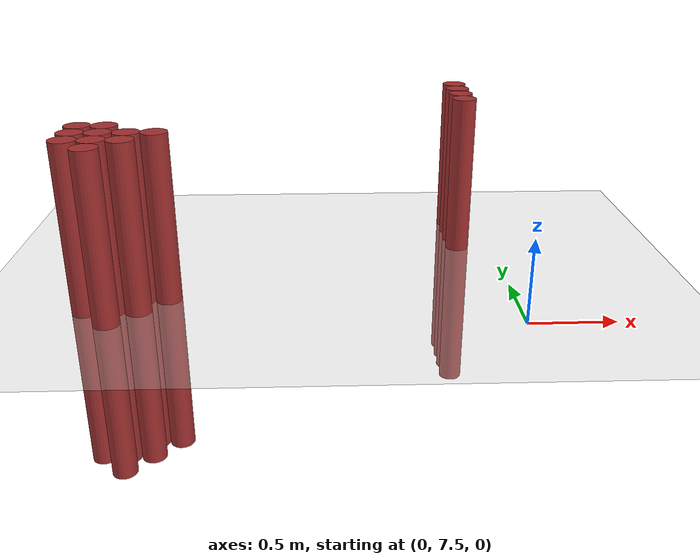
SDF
<sdf version="1.6">
 <world name="default">
  <model name="ground_plane">
   <static>1</static>
   <link name="link">
    <collision name="collision">
     <geometry><plane><normal>0 0 1</normal><size>100 100</size></plane></geometry>
     <surface><friction><ode><mu>100</mu><mu2>50</mu2></ode></friction></surface>
    </collision>
    <visual name="visual">
     <cast_shadows>0</cast_shadows>
     <geometry><plane><normal>0 0 1</normal><size>100 100</size></plane></geometry>
     <material>
      <script><uri>file://media/materials/scripts/gazebo.material</uri><name>Gazebo/Grey</name></script>
     </material>
    </visual>
   </link>
  </model>
  <model name="unit_cylinder_172">
   <static>1</static>
   <pose>-2.475000 7.725000 0.000000 0.000000 0.000000 0.000000</pose>
   <link name="link">
    <inertial>
     <mass>1</mass>
     <inertia><ixx>0.145833</ixx><ixy>0</ixy><ixz>0</ixz><iyy>0.145833</iyy><iyz>0</iyz><izz>0.125</izz></inertia>
    </inertial>
    <collision name="collision">
     <geometry><cylinder><radius>0.075000</radius><length>2</length></cylinder></geometry>
    </collision>
    <visual name="visual">
     <geometry><cylinder><radius>0.075000</radius><length>2</length></cylinder></geometry>
     <material>
      <ambient>0.648000 0.192000 0.192000 1</ambient>
      <diffuse>0.648000 0.192000 0.192000 1</diffuse>
     </material>
     <material>
      <script><name>Gazebo/Grey</name><uri>file://media/materials/scripts/gazebo.material</uri></script>
     </material>
    </visual>
   </link>
  </model>
  <model name="unit_cylinder_173">
   <static>1</static>
   <pose>-2.475000 7.875000 0.000000 0.000000 0.000000 0.000000</pose>
   <link name="link">
    <inertial>
     <mass>1</mass>
     <inertia><ixx>0.145833</ixx><ixy>0</ixy><ixz>0</ixz><iyy>0.145833</iyy><iyz>0</iyz><izz>0.125</izz></inertia>
    </inertial>
    <collision name="collision">
     <geometry><cylinder><radius>0.075000</radius><length>2</length></cylinder></geometry>
    </collision>
    <visual name="visual">
     <geometry><cylinder><radius>0.075000</radius><length>2</length></cylinder></geometry>
     <material>
      <ambient>0.648000 0.192000 0.192000 1</ambient>
      <diffuse>0.648000 0.192000 0.192000 1</diffuse>
     </material>
     <material>
      <script><name>Gazebo/Grey</name><uri>file://media/materials/scripts/gazebo.material</uri></script>
     </material>
    </visual>
   </link>
  </model>
  <model name="unit_cylinder_174">
   <static>1</static>
   <pose>-2.475000 8.025000 0.000000 0.000000 0.000000 0.000000</pose>
   <link name="link">
    <inertial>
     <mass>1</mass>
     <inertia><ixx>0.145833</ixx><ixy>0</ixy><ixz>0</ixz><iyy>0.145833</iyy><iyz>0</iyz><izz>0.125</izz></inertia>
    </inertial>
    <collision name="collision">
     <geometry><cylinder><radius>0.075000</radius><length>2</length></cylinder></geometry>
    </collision>
    <visual name="visual">
     <geometry><cylinder><radius>0.075000</radius><length>2</length></cylinder></geometry>
     <material>
      <ambient>0.648000 0.192000 0.192000 1</ambient>
      <diffuse>0.648000 0.192000 0.192000 1</diffuse>
     </material>
     <material>
      <script><name>Gazebo/Grey</name><uri>file://media/materials/scripts/gazebo.material</uri></script>
     </material>
    </visual>
   </link>
  </model>
  <model name="unit_cylinder_177">
   <static>1</static>
   <pose>-2.325000 7.575000 0.000000 0.000000 0.000000 0.000000</pose>
   <link name="link">
    <inertial>
     <mass>1</mass>
     <inertia><ixx>0.145833</ixx><ixy>0</ixy><ixz>0</ixz><iyy>0.145833</iyy><iyz>0</iyz><izz>0.125</izz></inertia>
    </inertial>
    <collision name="collision">
     <geometry><cylinder><radius>0.075000</radius><length>2</length></cylinder></geometry>
    </collision>
    <visual name="visual">
     <geometry><cylinder><radius>0.075000</radius><length>2</length></cylinder></geometry>
     <material>
      <ambient>0.648000 0.192000 0.192000 1</ambient>
      <diffuse>0.648000 0.192000 0.192000 1</diffuse>
     </material>
     <material>
      <script><name>Gazebo/Grey</name><uri>file://media/materials/scripts/gazebo.material</uri></script>
     </material>
    </visual>
   </link>
  </model>
  <model name="unit_cylinder_178">
   <static>1</static>
   <pose>-2.325000 7.725000 0.000000 0.000000 0.000000 0.000000</pose>
   <link name="link">
    <inertial>
     <mass>1</mass>
     <inertia><ixx>0.145833</ixx><ixy>0</ixy><ixz>0</ixz><iyy>0.145833</iyy><iyz>0</iyz><izz>0.125</izz></inertia>
    </inertial>
    <collision name="collision">
     <geometry><cylinder><radius>0.075000</radius><length>2</length></cylinder></geometry>
    </collision>
    <visual name="visual">
     <geometry><cylinder><radius>0.075000</radius><length>2</length></cylinder></geometry>
     <material>
      <ambient>0.648000 0.192000 0.192000 1</ambient>
      <diffuse>0.648000 0.192000 0.192000 1</diffuse>
     </material>
     <material>
      <script><name>Gazebo/Grey</name><uri>file://media/materials/scripts/gazebo.material</uri></script>
     </material>
    </visual>
   </link>
  </model>
  <model name="unit_cylinder_179">
   <static>1</static>
   <pose>-2.325000 7.875000 0.000000 0.000000 0.000000 0.000000</pose>
   <link name="link">
    <inertial>
     <mass>1</mass>
     <inertia><ixx>0.145833</ixx><ixy>0</ixy><ixz>0</ixz><iyy>0.145833</iyy><iyz>0</iyz><izz>0.125</izz></inertia>
    </inertial>
    <collision name="collision">
     <geometry><cylinder><radius>0.075000</radius><length>2</length></cylinder></geometry>
    </collision>
    <visual name="visual">
     <geometry><cylinder><radius>0.075000</radius><length>2</length></cylinder></geometry>
     <material>
      <ambient>0.648000 0.192000 0.192000 1</ambient>
      <diffuse>0.648000 0.192000 0.192000 1</diffuse>
     </material>
     <material>
      <script><name>Gazebo/Grey</name><uri>file://media/materials/scripts/gazebo.material</uri></script>
     </material>
    </visual>
   </link>
  </model>
  <model name="unit_cylinder_180">
   <static>1</static>
   <pose>-2.325000 8.025000 0.000000 0.000000 0.000000 0.000000</pose>
   <link name="link">
    <inertial>
     <mass>1</mass>
     <inertia><ixx>0.145833</ixx><ixy>0</ixy><ixz>0</ixz><iyy>0.145833</iyy><iyz>0</iyz><izz>0.125</izz></inertia>
    </inertial>
    <collision name="collision">
     <geometry><cylinder><radius>0.075000</radius><length>2</length></cylinder></geometry>
    </collision>
    <visual name="visual">
     <geometry><cylinder><radius>0.075000</radius><length>2</length></cylinder></geometry>
     <material>
      <ambient>0.648000 0.192000 0.192000 1</ambient>
      <diffuse>0.648000 0.192000 0.192000 1</diffuse>
     </material>
     <material>
      <script><name>Gazebo/Grey</name><uri>file://media/materials/scripts/gazebo.material</uri></script>
     </material>
    </visual>
   </link>
  </model>
  <model name="unit_cylinder_181">
   <static>1</static>
   <pose>-2.175000 7.725000 0.000000 0.000000 0.000000 0.000000</pose>
   <link name="link">
    <inertial>
     <mass>1</mass>
     <inertia><ixx>0.145833</ixx><ixy>0</ixy><ixz>0</ixz><iyy>0.145833</iyy><iyz>0</iyz><izz>0.125</izz></inertia>
    </inertial>
    <collision name="collision">
     <geometry><cylinder><radius>0.075000</radius><length>2</length></cylinder></geometry>
    </collision>
    <visual name="visual">
     <geometry><cylinder><radius>0.075000</radius><length>2</length></cylinder></geometry>
     <material>
      <ambient>0.648000 0.192000 0.192000 1</ambient>
      <diffuse>0.648000 0.192000 0.192000 1</diffuse>
     </material>
     <material>
      <script><name>Gazebo/Grey</name><uri>file://media/materials/scripts/gazebo.material</uri></script>
     </material>
    </visual>
   </link>
  </model>
  <model name="unit_cylinder_182">
   <static>1</static>
   <pose>-2.175000 7.875000 0.000000 0.000000 0.000000 0.000000</pose>
   <link name="link">
    <inertial>
     <mass>1</mass>
     <inertia><ixx>0.145833</ixx><ixy>0</ixy><ixz>0</ixz><iyy>0.145833</iyy><iyz>0</iyz><izz>0.125</izz></inertia>
    </inertial>
    <collision name="collision">
     <geometry><cylinder><radius>0.075000</radius><length>2</length></cylinder></geometry>
    </collision>
    <visual name="visual">
     <geometry><cylinder><radius>0.075000</radius><length>2</length></cylinder></geometry>
     <material>
      <ambient>0.648000 0.192000 0.192000 1</ambient>
      <diffuse>0.648000 0.192000 0.192000 1</diffuse>
     </material>
     <material>
      <script><name>Gazebo/Grey</name><uri>file://media/materials/scripts/gazebo.material</uri></script>
     </material>
    </visual>
   </link>
  </model>
  <model name="unit_cylinder_183">
   <static>1</static>
   <pose>-2.025000 7.875000 0.000000 0.000000 0.000000 0.000000</pose>
   <link name="link">
    <inertial>
     <mass>1</mass>
     <inertia><ixx>0.145833</ixx><ixy>0</ixy><ixz>0</ixz><iyy>0.145833</iyy><iyz>0</iyz><izz>0.125</izz></inertia>
    </inertial>
    <collision name="collision">
     <geometry><cylinder><radius>0.075000</radius><length>2</length></cylinder></geometry>
    </collision>
    <visual name="visual">
     <geometry><cylinder><radius>0.075000</radius><length>2</length></cylinder></geometry>
     <material>
      <ambient>0.648000 0.192000 0.192000 1</ambient>
      <diffuse>0.648000 0.192000 0.192000 1</diffuse>
     </material>
     <material>
      <script><name>Gazebo/Grey</name><uri>file://media/materials/scripts/gazebo.material</uri></script>
     </material>
    </visual>
   </link>
  </model>
  <model name="unit_cylinder_190">
   <static>1</static>
   <pose>-0.225000 8.625000 0.000000 0.000000 0.000000 0.000000</pose>
   <link name="link">
    <inertial>
     <mass>1</mass>
     <inertia><ixx>0.145833</ixx><ixy>0</ixy><ixz>0</ixz><iyy>0.145833</iyy><iyz>0</iyz><izz>0.125</izz></inertia>
    </inertial>
    <collision name="collision">
     <geometry><cylinder><radius>0.075000</radius><length>2</length></cylinder></geometry>
    </collision>
    <visual name="visual">
     <geometry><cylinder><radius>0.075000</radius><length>2</length></cylinder></geometry>
     <material>
      <ambient>0.648000 0.192000 0.192000 1</ambient>
      <diffuse>0.648000 0.192000 0.192000 1</diffuse>
     </material>
     <material>
      <script><name>Gazebo/Grey</name><uri>file://media/materials/scripts/gazebo.material</uri></script>
     </material>
    </visual>
   </link>
  </model>
  <model name="unit_cylinder_191">
   <static>1</static>
   <pose>-0.225000 8.775000 0.000000 0.000000 0.000000 0.000000</pose>
   <link name="link">
    <inertial>
     <mass>1</mass>
     <inertia><ixx>0.145833</ixx><ixy>0</ixy><ixz>0</ixz><iyy>0.145833</iyy><iyz>0</iyz><izz>0.125</izz></inertia>
    </inertial>
    <collision name="collision">
     <geometry><cylinder><radius>0.075000</radius><length>2</length></cylinder></geometry>
    </collision>
    <visual name="visual">
     <geometry><cylinder><radius>0.075000</radius><length>2</length></cylinder></geometry>
     <material>
      <ambient>0.648000 0.192000 0.192000 1</ambient>
      <diffuse>0.648000 0.192000 0.192000 1</diffuse>
     </material>
     <material>
      <script><name>Gazebo/Grey</name><uri>file://media/materials/scripts/gazebo.material</uri></script>
     </material>
    </visual>
   </link>
  </model>
  <model name="unit_cylinder_192">
   <static>1</static>
   <pose>-0.225000 8.925000 0.000000 0.000000 0.000000 0.000000</pose>
   <link name="link">
    <inertial>
     <mass>1</mass>
     <inertia><ixx>0.145833</ixx><ixy>0</ixy><ixz>0</ixz><iyy>0.145833</iyy><iyz>0</iyz><izz>0.125</izz></inertia>
    </inertial>
    <collision name="collision">
     <geometry><cylinder><radius>0.075000</radius><length>2</length></cylinder></geometry>
    </collision>
    <visual name="visual">
     <geometry><cylinder><radius>0.075000</radius><length>2</length></cylinder></geometry>
     <material>
      <ambient>0.648000 0.192000 0.192000 1</ambient>
      <diffuse>0.648000 0.192000 0.192000 1</diffuse>
     </material>
     <material>
      <script><name>Gazebo/Grey</name><uri>file://media/materials/scripts/gazebo.material</uri></script>
     </material>
    </visual>
   </link>
  </model>
  <model name="unit_cylinder_193">
   <static>1</static>
   <pose>-0.225000 9.075000 0.000000 0.000000 0.000000 0.000000</pose>
   <link name="link">
    <inertial>
     <mass>1</mass>
     <inertia><ixx>0.145833</ixx><ixy>0</ixy><ixz>0</ixz><iyy>0.145833</iyy><iyz>0</iyz><izz>0.125</izz></inertia>
    </inertial>
    <collision name="collision">
     <geometry><cylinder><radius>0.075000</radius><length>2</length></cylinder></geometry>
    </collision>
    <visual name="visual">
     <geometry><cylinder><radius>0.075000</radius><length>2</length></cylinder></geometry>
     <material>
      <ambient>0.648000 0.192000 0.192000 1</ambient>
      <diffuse>0.648000 0.192000 0.192000 1</diffuse>
     </material>
     <material>
      <script><name>Gazebo/Grey</name><uri>file://media/materials/scripts/gazebo.material</uri></script>
     </material>
    </visual>
   </link>
  </model>
 </world>
</sdf>
